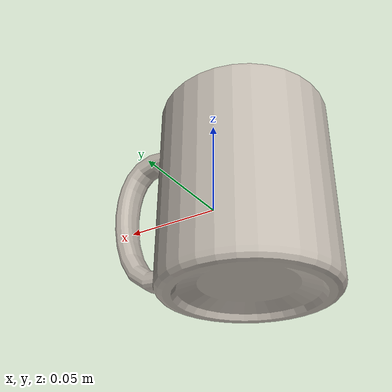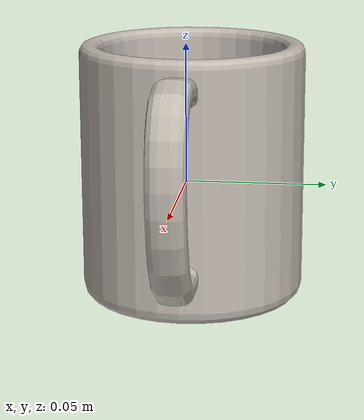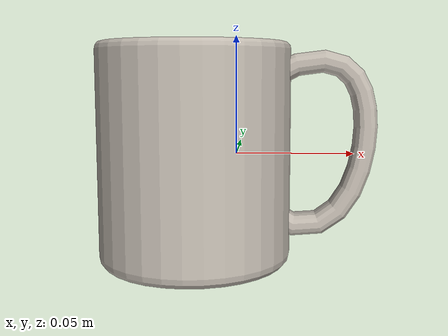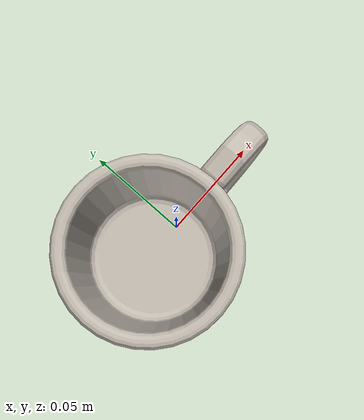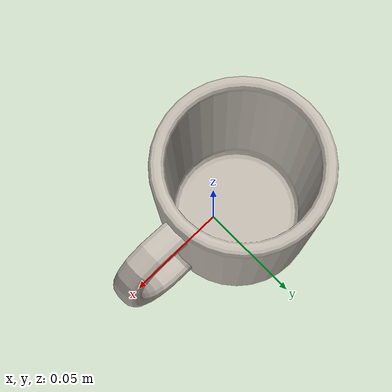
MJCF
<mujoco model="mug">
  <asset>
    <mesh file="meshes/mug_2_m.obj" name="mug_mesh" scale="1 1 1"/>
    <texture type="2d" file="../textures/steel-brushed.png" name="tex-ceramic"/>
    <material name="ceramic" reflectance="0.3" texrepeat="3 3" texture="tex-ceramic" texuniform="true"/>
  </asset>
  <worldbody>
    <body>
      <body name="object">
        <geom pos="0 0 0" mesh="mug_mesh" type="mesh" solimp="0.998 0.998 0.001" solref="0.001 1" density="100" friction="0.95 0.3 0.1" material="ceramic" contype="0" conaffinity="0" group="1"/>
        <geom pos="0 0 0" mesh="mug_mesh" type="mesh" solimp="0.998 0.998 0.001" solref="0.001 1" density="100" friction="0.95 0.3 0.1" material="ceramic" group="0"/>
      </body>
      <site rgba="0 0 0 0" size="0.005" pos="0 0 0" name="bottom_site"/>
      <site rgba="0 0 0 0" size="0.005" pos="0 0.00 0.0827" name="top_site"/>
      <site rgba="0 0 0 0" size="0.005" pos="0.045 0.045 0" name="horizontal_radius_site"/>
    </body>
  </worldbody>
</mujoco>
